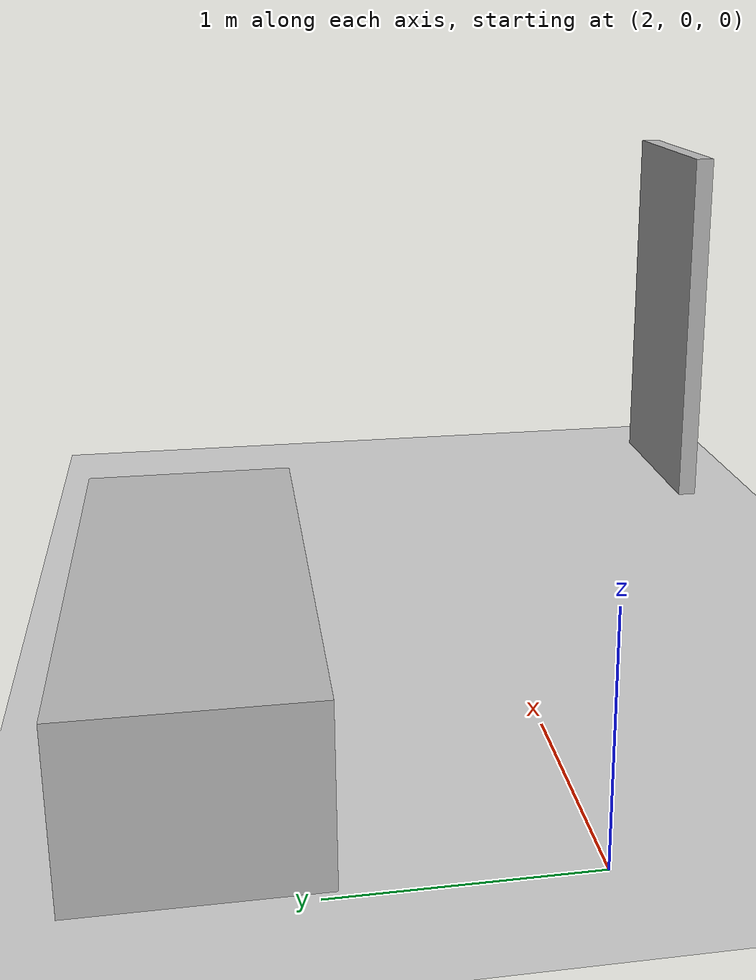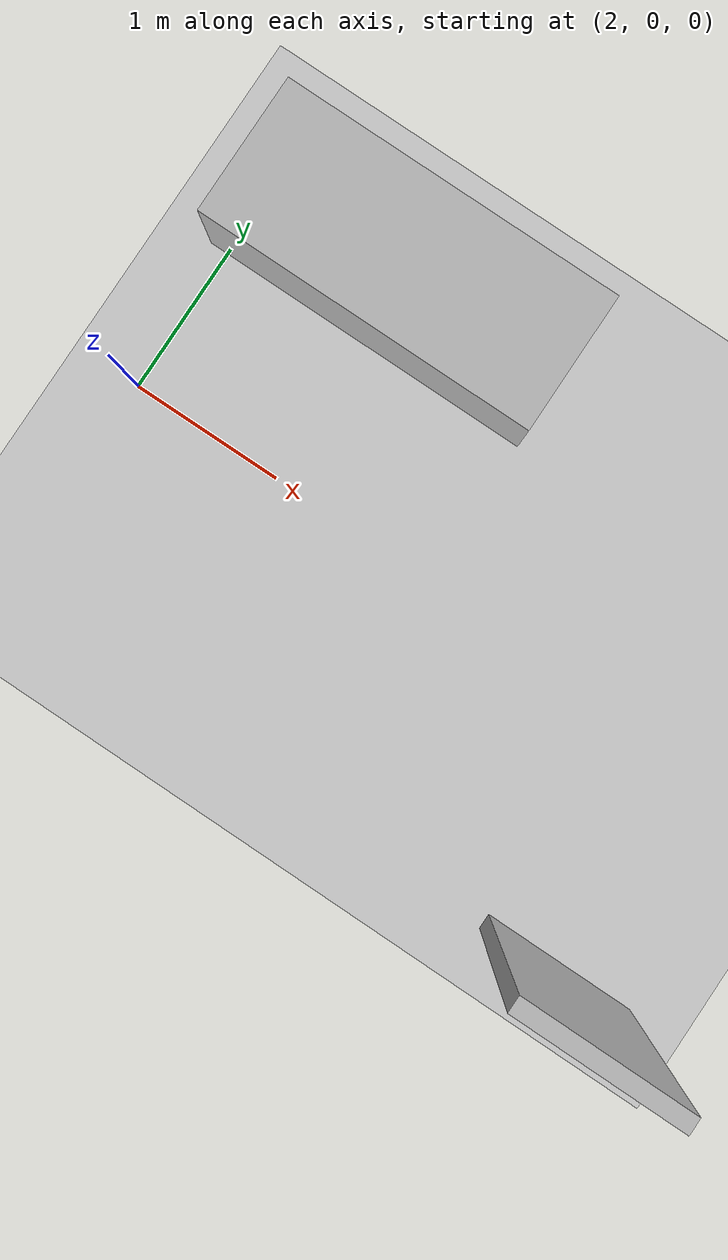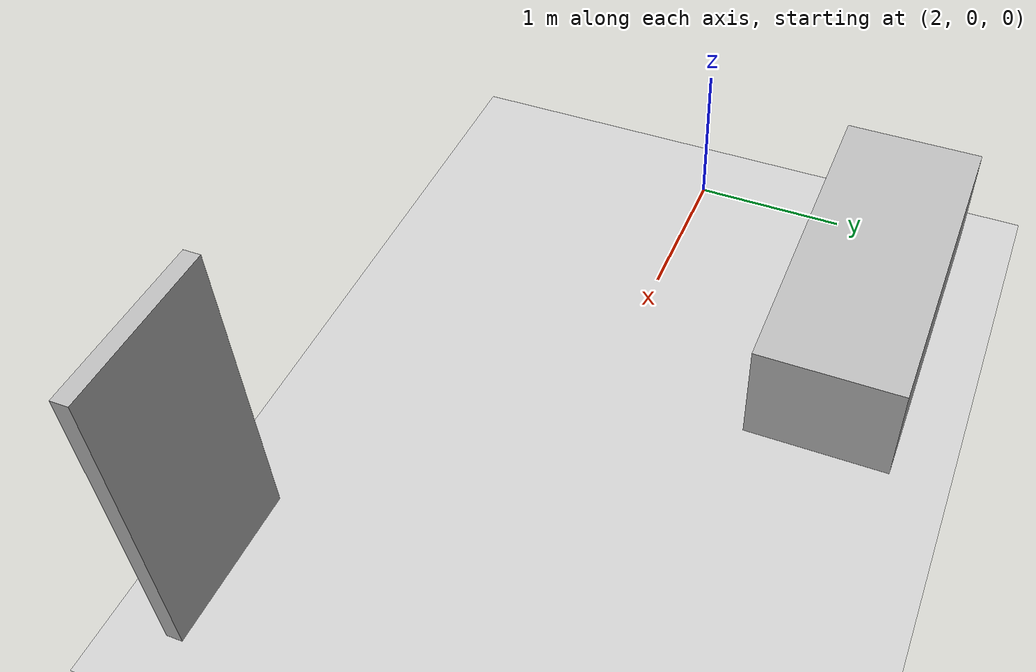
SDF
<?xml version="1.0"?>
<sdf version="1.9"><world name="hospital_patient_room"><plugin filename="gz-sim-physics-system" name="gz::sim::systems::Physics"/><plugin filename="gz-sim-scene-broadcaster-system" name="gz::sim::systems::SceneBroadcaster"/><include><uri>model://sun</uri></include><include><uri>model://ground_plane</uri></include><model name="hospital_bed"><static>true</static><pose>3 1.4 0.45 0 0 0</pose><link name="link"><collision name="c"><geometry><box><size>2.2 0.9 0.7</size></box></geometry></collision><visual name="v"><geometry><box><size>2.2 0.9 0.7</size></box></geometry></visual></link></model><model name="closed_door"><static>true</static><pose>6 -1.5 1 0 0 0</pose><link name="link"><collision name="c"><geometry><box><size>1 0.1 2</size></box></geometry></collision><visual name="v"><geometry><box><size>1 0.1 2</size></box></geometry></visual></link></model></world></sdf>
